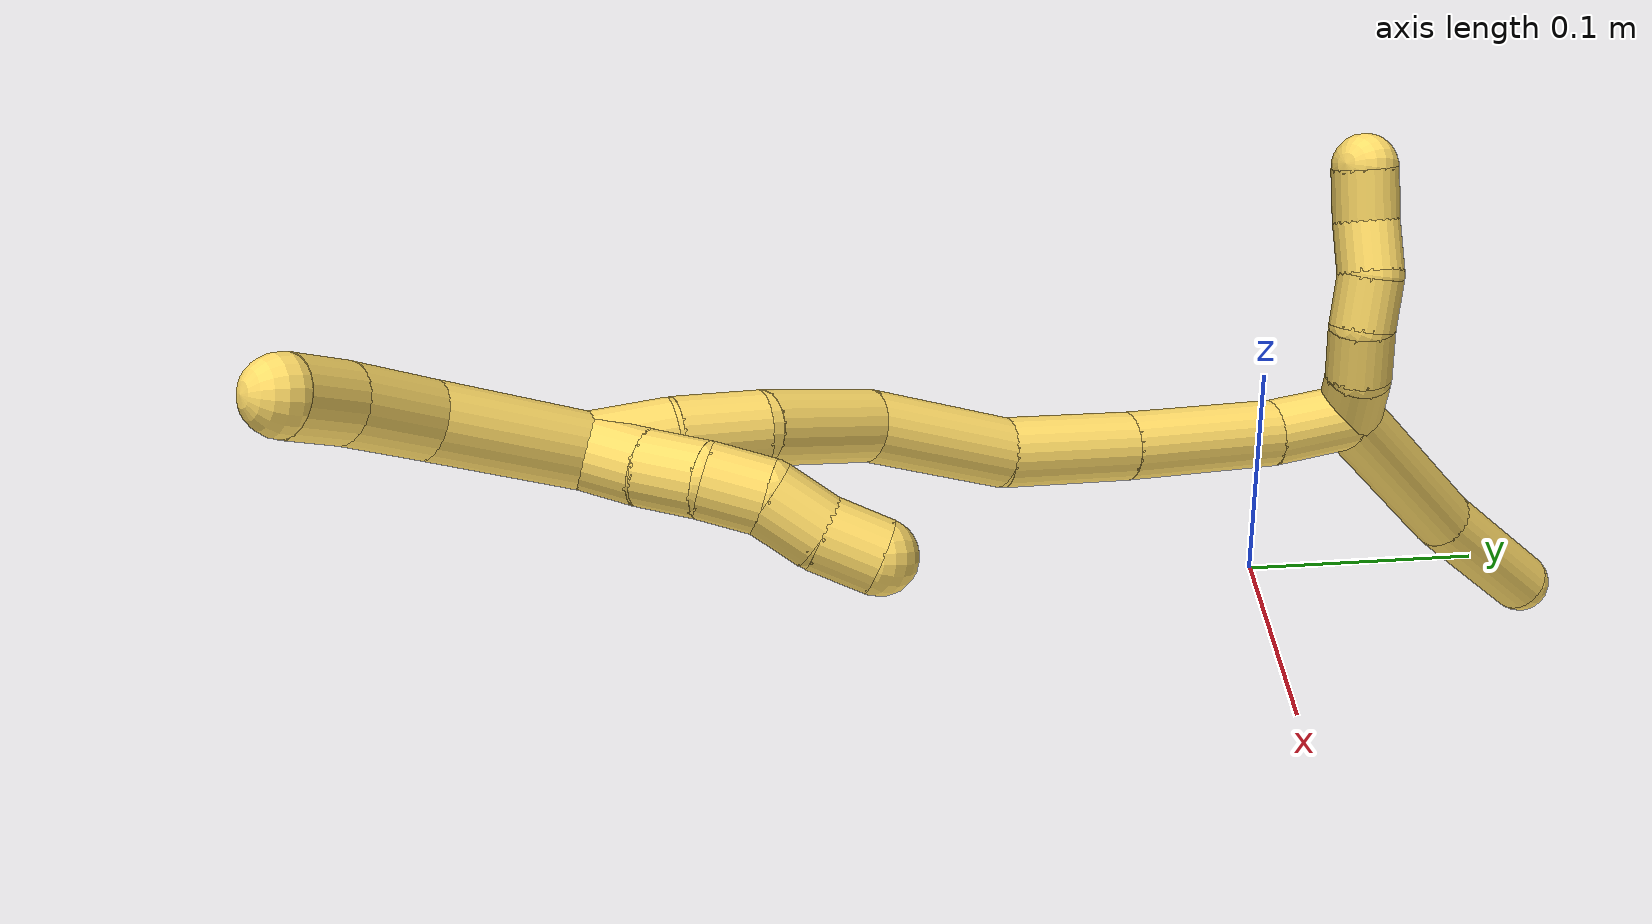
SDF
<sdf version="1.7">
 <world name="default">
  <model name="5">
   <static>0</static>
   <link name="5">
    <collision name="collision-cylinder-e_1_2_8">
     <pose>-0.01358 0.016127 -0.037434 -2.7348 -0.321593 1.3328</pose>
     <geometry><cylinder><radius>0.0125</radius><length>0.085925</length></cylinder></geometry>
     <surface>
      <friction><ode><mu>1.16</mu><mu2>1.16</mu2><slip1>0</slip1><slip2>0</slip2></ode></friction>
      <contact><ode><kp>1e+06</kp><kd>1</kd><max_vel>0</max_vel><min_depth>0.001</min_depth></ode></contact>
     </surface>
    </collision>
    <visual name="visual-cylinder-e_1_2_8">
     <pose>-0.01358 0.016127 -0.037434 -2.7348 -0.321593 1.3328</pose>
     <geometry><cylinder><radius>0.0125</radius><length>0.085925</length></cylinder></geometry>
     <material><ambient>1 0.858824 0.4 1</ambient></material>
    </visual>
    <collision name="collision-cylinder-e_2_8_6">
     <pose>-0.039055 0.04089 -0.103333 -2.84706 -0.380426 1.82868</pose>
     <geometry><cylinder><radius>0.0125</radius><length>0.064075</length></cylinder></geometry>
     <surface>
      <friction><ode><mu>1.16</mu><mu2>1.16</mu2><slip1>0</slip1><slip2>0</slip2></ode></friction>
      <contact><ode><kp>1e+06</kp><kd>1</kd><max_vel>0</max_vel><min_depth>0.001</min_depth></ode></contact>
     </surface>
    </collision>
    <visual name="visual-cylinder-e_2_8_6">
     <pose>-0.039055 0.04089 -0.103333 -2.84706 -0.380426 1.82868</pose>
     <geometry><cylinder><radius>0.0125</radius><length>0.064075</length></cylinder></geometry>
     <material><ambient>1 0.858824 0.4 1</ambient></material>
    </visual>
    <collision name="collision-cylinder-e_1_2_9">
     <pose>0.001788 -0.008811 0.004378 1.10968 0.179766 0.111601</pose>
     <geometry><cylinder><radius>0.0125</radius><length>0.02</length></cylinder></geometry>
     <surface>
      <friction><ode><mu>1.16</mu><mu2>1.16</mu2><slip1>0</slip1><slip2>0</slip2></ode></friction>
      <contact><ode><kp>1e+06</kp><kd>1</kd><max_vel>0</max_vel><min_depth>0.001</min_depth></ode></contact>
     </surface>
    </collision>
    <visual name="visual-cylinder-e_1_2_9">
     <pose>0.001788 -0.008811 0.004378 1.10968 0.179766 0.111601</pose>
     <geometry><cylinder><radius>0.0125</radius><length>0.02</length></cylinder></geometry>
     <material><ambient>1 0.858824 0.4 1</ambient></material>
    </visual>
    <collision name="collision-cylinder-e_2_9_10">
     <pose>0.007902 -0.025999 0.01209 1.1919 0.447396 0.306177</pose>
     <geometry><cylinder><radius>0.0125</radius><length>0.02</length></cylinder></geometry>
     <surface>
      <friction><ode><mu>1.16</mu><mu2>1.16</mu2><slip1>0</slip1><slip2>0</slip2></ode></friction>
      <contact><ode><kp>1e+06</kp><kd>1</kd><max_vel>0</max_vel><min_depth>0.001</min_depth></ode></contact>
     </surface>
    </collision>
    <visual name="visual-cylinder-e_2_9_10">
     <pose>0.007902 -0.025999 0.01209 1.1919 0.447396 0.306177</pose>
     <geometry><cylinder><radius>0.0125</radius><length>0.02</length></cylinder></geometry>
     <material><ambient>1 0.858824 0.4 1</ambient></material>
    </visual>
    <collision name="collision-cylinder-e_3_10_11">
     <pose>0.017562 -0.042815 0.015992 1.50374 0.562563 0.527777</pose>
     <geometry><cylinder><radius>0.0125</radius><length>0.02</length></cylinder></geometry>
     <surface>
      <friction><ode><mu>1.16</mu><mu2>1.16</mu2><slip1>0</slip1><slip2>0</slip2></ode></friction>
      <contact><ode><kp>1e+06</kp><kd>1</kd><max_vel>0</max_vel><min_depth>0.001</min_depth></ode></contact>
     </surface>
    </collision>
    <visual name="visual-cylinder-e_3_10_11">
     <pose>0.017562 -0.042815 0.015992 1.50374 0.562563 0.527777</pose>
     <geometry><cylinder><radius>0.0125</radius><length>0.02</length></cylinder></geometry>
     <material><ambient>1 0.858824 0.4 1</ambient></material>
    </visual>
    <collision name="collision-cylinder-e_4_11_12">
     <pose>0.030726 -0.057474 0.01662 1.56094 0.899627 0.891931</pose>
     <geometry><cylinder><radius>0.0125</radius><length>0.02</length></cylinder></geometry>
     <surface>
      <friction><ode><mu>1.16</mu><mu2>1.16</mu2><slip1>0</slip1><slip2>0</slip2></ode></friction>
      <contact><ode><kp>1e+06</kp><kd>1</kd><max_vel>0</max_vel><min_depth>0.001</min_depth></ode></contact>
     </surface>
    </collision>
    <visual name="visual-cylinder-e_4_11_12">
     <pose>0.030726 -0.057474 0.01662 1.56094 0.899627 0.891931</pose>
     <geometry><cylinder><radius>0.0125</radius><length>0.02</length></cylinder></geometry>
     <material><ambient>1 0.858824 0.4 1</ambient></material>
    </visual>
    <collision name="collision-cylinder-e_5_12_5">
     <pose>0.044903 -0.071185 0.01858 1.32264 0.687396 0.543285</pose>
     <geometry><cylinder><radius>0.0125</radius><length>0.02</length></cylinder></geometry>
     <surface>
      <friction><ode><mu>1.16</mu><mu2>1.16</mu2><slip1>0</slip1><slip2>0</slip2></ode></friction>
      <contact><ode><kp>1e+06</kp><kd>1</kd><max_vel>0</max_vel><min_depth>0.001</min_depth></ode></contact>
     </surface>
    </collision>
    <visual name="visual-cylinder-e_5_12_5">
     <pose>0.044903 -0.071185 0.01858 1.32264 0.687396 0.543285</pose>
     <geometry><cylinder><radius>0.0125</radius><length>0.02</length></cylinder></geometry>
     <material><ambient>1 0.858824 0.4 1</ambient></material>
    </visual>
    <collision name="collision-cylinder-e_1_2_13">
     <pose>0.003435 0.008055 0.014086 -0.51946 0.208592 -0.055617</pose>
     <geometry><cylinder><radius>0.0125</radius><length>0.033173</length></cylinder></geometry>
     <surface>
      <friction><ode><mu>1.16</mu><mu2>1.16</mu2><slip1>0</slip1><slip2>0</slip2></ode></friction>
      <contact><ode><kp>1e+06</kp><kd>1</kd><max_vel>0</max_vel><min_depth>0.001</min_depth></ode></contact>
     </surface>
    </collision>
    <visual name="visual-cylinder-e_1_2_13">
     <pose>0.003435 0.008055 0.014086 -0.51946 0.208592 -0.055617</pose>
     <geometry><cylinder><radius>0.0125</radius><length>0.033173</length></cylinder></geometry>
     <material><ambient>1 0.858824 0.4 1</ambient></material>
    </visual>
    <collision name="collision-cylinder-e_2_13_14">
     <pose>0.013589 0.02636 0.056142 -0.351278 0.221879 -0.039533</pose>
     <geometry><cylinder><radius>0.0125</radius><length>0.061073</length></cylinder></geometry>
     <surface>
      <friction><ode><mu>1.16</mu><mu2>1.16</mu2><slip1>0</slip1><slip2>0</slip2></ode></friction>
      <contact><ode><kp>1e+06</kp><kd>1</kd><max_vel>0</max_vel><min_depth>0.001</min_depth></ode></contact>
     </surface>
    </collision>
    <visual name="visual-cylinder-e_2_13_14">
     <pose>0.013589 0.02636 0.056142 -0.351278 0.221879 -0.039533</pose>
     <geometry><cylinder><radius>0.0125</radius><length>0.061073</length></cylinder></geometry>
     <material><ambient>1 0.858824 0.4 1</ambient></material>
    </visual>
    <collision name="collision-cylinder-e_3_14_15">
     <pose>0.026335 0.044318 0.106741 -0.328252 0.246885 -0.041091</pose>
     <geometry><cylinder><radius>0.0125</radius><length>0.049309</length></cylinder></geometry>
     <surface>
      <friction><ode><mu>1.16</mu><mu2>1.16</mu2><slip1>0</slip1><slip2>0</slip2></ode></friction>
      <contact><ode><kp>1e+06</kp><kd>1</kd><max_vel>0</max_vel><min_depth>0.001</min_depth></ode></contact>
     </surface>
    </collision>
    <visual name="visual-cylinder-e_3_14_15">
     <pose>0.026335 0.044318 0.106741 -0.328252 0.246885 -0.041091</pose>
     <geometry><cylinder><radius>0.0125</radius><length>0.049309</length></cylinder></geometry>
     <material><ambient>1 0.858824 0.4 1</ambient></material>
    </visual>
    <collision name="collision-cylinder-e_4_15_16">
     <pose>0.041317 0.054315 0.154543 -0.090715 0.340564 -0.015609</pose>
     <geometry><cylinder><radius>0.0125</radius><length>0.05363</length></cylinder></geometry>
     <surface>
      <friction><ode><mu>1.16</mu><mu2>1.16</mu2><slip1>0</slip1><slip2>0</slip2></ode></friction>
      <contact><ode><kp>1e+06</kp><kd>1</kd><max_vel>0</max_vel><min_depth>0.001</min_depth></ode></contact>
     </surface>
    </collision>
    <visual name="visual-cylinder-e_4_15_16">
     <pose>0.041317 0.054315 0.154543 -0.090715 0.340564 -0.015609</pose>
     <geometry><cylinder><radius>0.0125</radius><length>0.05363</length></cylinder></geometry>
     <material><ambient>1 0.858824 0.4 1</ambient></material>
    </visual>
    <collision name="collision-cylinder-e_5_16_17">
     <pose>0.050469 0.057395 0.202584 -0.034563 0.008539 -0.000148</pose>
     <geometry><cylinder><radius>0.0125</radius><length>0.045769</length></cylinder></geometry>
     <surface>
      <friction><ode><mu>1.16</mu><mu2>1.16</mu2><slip1>0</slip1><slip2>0</slip2></ode></friction>
      <contact><ode><kp>1e+06</kp><kd>1</kd><max_vel>0</max_vel><min_depth>0.001</min_depth></ode></contact>
     </surface>
    </collision>
    <visual name="visual-cylinder-e_5_16_17">
     <pose>0.050469 0.057395 0.202584 -0.034563 0.008539 -0.000148</pose>
     <geometry><cylinder><radius>0.0125</radius><length>0.045769</length></cylinder></geometry>
     <material><ambient>1 0.858824 0.4 1</ambient></material>
    </visual>
    <collision name="collision-cylinder-e_6_17_18">
     <pose>0.053276 0.062546 0.239323 -0.304577 0.177752 -0.027351</pose>
     <geometry><cylinder><radius>0.0125</radius><length>0.029542</length></cylinder></geometry>
     <surface>
      <friction><ode><mu>1.16</mu><mu2>1.16</mu2><slip1>0</slip1><slip2>0</slip2></ode></friction>
      <contact><ode><kp>1e+06</kp><kd>1</kd><max_vel>0</max_vel><min_depth>0.001</min_depth></ode></contact>
     </surface>
    </collision>
    <visual name="visual-cylinder-e_6_17_18">
     <pose>0.053276 0.062546 0.239323 -0.304577 0.177752 -0.027351</pose>
     <geometry><cylinder><radius>0.0125</radius><length>0.029542</length></cylinder></geometry>
     <material><ambient>1 0.858824 0.4 1</ambient></material>
    </visual>
    <collision name="collision-cylinder-e_7_18_1">
     <pose>0.058228 0.072832 0.265379 -0.452651 0.171046 -0.039478</pose>
     <geometry><cylinder><radius>0.0125</radius><length>0.027503</length></cylinder></geometry>
     <surface>
      <friction><ode><mu>1.16</mu><mu2>1.16</mu2><slip1>0</slip1><slip2>0</slip2></ode></friction>
      <contact><ode><kp>1e+06</kp><kd>1</kd><max_vel>0</max_vel><min_depth>0.001</min_depth></ode></contact>
     </surface>
    </collision>
    <visual name="visual-cylinder-e_7_18_1">
     <pose>0.058228 0.072832 0.265379 -0.452651 0.171046 -0.039478</pose>
     <geometry><cylinder><radius>0.0125</radius><length>0.027503</length></cylinder></geometry>
     <material><ambient>1 0.858824 0.4 1</ambient></material>
    </visual>
    <collision name="collision-cylinder-e_1_1_19">
     <pose>0.052884 0.07449 0.272799 2.41121 -0.876556 -1.77301</pose>
     <geometry><cylinder><radius>0.0125</radius><length>0.02</length></cylinder></geometry>
     <surface>
      <friction><ode><mu>1.16</mu><mu2>1.16</mu2><slip1>0</slip1><slip2>0</slip2></ode></friction>
      <contact><ode><kp>1e+06</kp><kd>1</kd><max_vel>0</max_vel><min_depth>0.001</min_depth></ode></contact>
     </surface>
    </collision>
    <visual name="visual-cylinder-e_1_1_19">
     <pose>0.052884 0.07449 0.272799 2.41121 -0.876556 -1.77301</pose>
     <geometry><cylinder><radius>0.0125</radius><length>0.02</length></cylinder></geometry>
     <material><ambient>1 0.858824 0.4 1</ambient></material>
    </visual>
    <collision name="collision-cylinder-e_2_19_20">
     <pose>0.038024 0.065555 0.262861 2.40746 -0.800107 -1.66577</pose>
     <geometry><cylinder><radius>0.0125</radius><length>0.02</length></cylinder></geometry>
     <surface>
      <friction><ode><mu>1.16</mu><mu2>1.16</mu2><slip1>0</slip1><slip2>0</slip2></ode></friction>
      <contact><ode><kp>1e+06</kp><kd>1</kd><max_vel>0</max_vel><min_depth>0.001</min_depth></ode></contact>
     </surface>
    </collision>
    <visual name="visual-cylinder-e_2_19_20">
     <pose>0.038024 0.065555 0.262861 2.40746 -0.800107 -1.66577</pose>
     <geometry><cylinder><radius>0.0125</radius><length>0.02</length></cylinder></geometry>
     <material><ambient>1 0.858824 0.4 1</ambient></material>
    </visual>
    <collision name="collision-cylinder-e_3_20_21">
     <pose>0.024271 0.057995 0.250736 2.74729 -0.718024 -2.16334</pose>
     <geometry><cylinder><radius>0.0125</radius><length>0.02</length></cylinder></geometry>
     <surface>
      <friction><ode><mu>1.16</mu><mu2>1.16</mu2><slip1>0</slip1><slip2>0</slip2></ode></friction>
      <contact><ode><kp>1e+06</kp><kd>1</kd><max_vel>0</max_vel><min_depth>0.001</min_depth></ode></contact>
     </surface>
    </collision>
    <visual name="visual-cylinder-e_3_20_21">
     <pose>0.024271 0.057995 0.250736 2.74729 -0.718024 -2.16334</pose>
     <geometry><cylinder><radius>0.0125</radius><length>0.02</length></cylinder></geometry>
     <material><ambient>1 0.858824 0.4 1</ambient></material>
    </visual>
    <collision name="collision-cylinder-e_4_21_22">
     <pose>0.010295 0.055531 0.237067 -3.0777 -0.832643 2.9973</pose>
     <geometry><cylinder><radius>0.0125</radius><length>0.02</length></cylinder></geometry>
     <surface>
      <friction><ode><mu>1.16</mu><mu2>1.16</mu2><slip1>0</slip1><slip2>0</slip2></ode></friction>
      <contact><ode><kp>1e+06</kp><kd>1</kd><max_vel>0</max_vel><min_depth>0.001</min_depth></ode></contact>
     </surface>
    </collision>
    <visual name="visual-cylinder-e_4_21_22">
     <pose>0.010295 0.055531 0.237067 -3.0777 -0.832643 2.9973</pose>
     <geometry><cylinder><radius>0.0125</radius><length>0.02</length></cylinder></geometry>
     <material><ambient>1 0.858824 0.4 1</ambient></material>
    </visual>
    <collision name="collision-cylinder-e_5_22_4">
     <pose>-0.003829 0.05462 0.223075 2.95943 -0.737822 -2.67761</pose>
     <geometry><cylinder><radius>0.0125</radius><length>0.02</length></cylinder></geometry>
     <surface>
      <friction><ode><mu>1.16</mu><mu2>1.16</mu2><slip1>0</slip1><slip2>0</slip2></ode></friction>
      <contact><ode><kp>1e+06</kp><kd>1</kd><max_vel>0</max_vel><min_depth>0.001</min_depth></ode></contact>
     </surface>
    </collision>
    <visual name="visual-cylinder-e_5_22_4">
     <pose>-0.003829 0.05462 0.223075 2.95943 -0.737822 -2.67761</pose>
     <geometry><cylinder><radius>0.0125</radius><length>0.02</length></cylinder></geometry>
     <material><ambient>1 0.858824 0.4 1</ambient></material>
    </visual>
    <collision name="collision-cylinder-e_1_1_23">
     <pose>0.067836 0.079245 0.301785 -0.02005 0.291447 -0.002943</pose>
     <geometry><cylinder><radius>0.0125</radius><length>0.050584</length></cylinder></geometry>
     <surface>
      <friction><ode><mu>1.16</mu><mu2>1.16</mu2><slip1>0</slip1><slip2>0</slip2></ode></friction>
      <contact><ode><kp>1e+06</kp><kd>1</kd><max_vel>0</max_vel><min_depth>0.001</min_depth></ode></contact>
     </surface>
    </collision>
    <visual name="visual-cylinder-e_1_1_23">
     <pose>0.067836 0.079245 0.301785 -0.02005 0.291447 -0.002943</pose>
     <geometry><cylinder><radius>0.0125</radius><length>0.050584</length></cylinder></geometry>
     <material><ambient>1 0.858824 0.4 1</ambient></material>
    </visual>
    <collision name="collision-cylinder-e_2_23_24">
     <pose>0.075768 0.077006 0.340335 0.187871 0.045521 0.004289</pose>
     <geometry><cylinder><radius>0.0125</radius><length>0.029201</length></cylinder></geometry>
     <surface>
      <friction><ode><mu>1.16</mu><mu2>1.16</mu2><slip1>0</slip1><slip2>0</slip2></ode></friction>
      <contact><ode><kp>1e+06</kp><kd>1</kd><max_vel>0</max_vel><min_depth>0.001</min_depth></ode></contact>
     </surface>
    </collision>
    <visual name="visual-cylinder-e_2_23_24">
     <pose>0.075768 0.077006 0.340335 0.187871 0.045521 0.004289</pose>
     <geometry><cylinder><radius>0.0125</radius><length>0.029201</length></cylinder></geometry>
     <material><ambient>1 0.858824 0.4 1</ambient></material>
    </visual>
    <collision name="collision-cylinder-e_3_24_3">
     <pose>0.075795 0.072308 0.364556 0.196925 -0.063167 -0.006242</pose>
     <geometry><cylinder><radius>0.0125</radius><length>0.020215</length></cylinder></geometry>
     <surface>
      <friction><ode><mu>1.16</mu><mu2>1.16</mu2><slip1>0</slip1><slip2>0</slip2></ode></friction>
      <contact><ode><kp>1e+06</kp><kd>1</kd><max_vel>0</max_vel><min_depth>0.001</min_depth></ode></contact>
     </surface>
    </collision>
    <visual name="visual-cylinder-e_3_24_3">
     <pose>0.075795 0.072308 0.364556 0.196925 -0.063167 -0.006242</pose>
     <geometry><cylinder><radius>0.0125</radius><length>0.020215</length></cylinder></geometry>
     <material><ambient>1 0.858824 0.4 1</ambient></material>
    </visual>
    <collision name="collision-sphere-3">
     <pose>0.075156 0.070335 0.374448 0 -0 0</pose>
     <geometry><sphere><radius>0.0125</radius></sphere></geometry>
     <surface>
      <friction><ode><mu>1.16</mu><mu2>1.16</mu2><slip1>0</slip1><slip2>0</slip2></ode></friction>
      <contact><ode><kp>1e+06</kp><kd>1</kd><max_vel>0</max_vel><min_depth>0.001</min_depth></ode></contact>
     </surface>
    </collision>
    <visual name="visual-sphere-3">
     <pose>0.075156 0.070335 0.374448 0 -0 0</pose>
     <geometry><sphere><radius>0.0125</radius></sphere></geometry>
     <material><ambient>1 0.858824 0.4 1</ambient></material>
    </visual>
    <collision name="collision-sphere-24">
     <pose>0.076433 0.074282 0.354664 0 -0 0</pose>
     <geometry><sphere><radius>0.0125</radius></sphere></geometry>
     <surface>
      <friction><ode><mu>1.16</mu><mu2>1.16</mu2><slip1>0</slip1><slip2>0</slip2></ode></friction>
      <contact><ode><kp>1e+06</kp><kd>1</kd><max_vel>0</max_vel><min_depth>0.001</min_depth></ode></contact>
     </surface>
    </collision>
    <visual name="visual-sphere-24">
     <pose>0.076433 0.074282 0.354664 0 -0 0</pose>
     <geometry><sphere><radius>0.0125</radius></sphere></geometry>
     <material><ambient>1 0.858824 0.4 1</ambient></material>
    </visual>
    <collision name="collision-sphere-23">
     <pose>0.075104 0.07973 0.326006 0 -0 0</pose>
     <geometry><sphere><radius>0.0125</radius></sphere></geometry>
     <surface>
      <friction><ode><mu>1.16</mu><mu2>1.16</mu2><slip1>0</slip1><slip2>0</slip2></ode></friction>
      <contact><ode><kp>1e+06</kp><kd>1</kd><max_vel>0</max_vel><min_depth>0.001</min_depth></ode></contact>
     </surface>
    </collision>
    <visual name="visual-sphere-23">
     <pose>0.075104 0.07973 0.326006 0 -0 0</pose>
     <geometry><sphere><radius>0.0125</radius></sphere></geometry>
     <material><ambient>1 0.858824 0.4 1</ambient></material>
    </visual>
    <collision name="collision-sphere-4">
     <pose>-0.010556 0.05328 0.215798 0 -0 0</pose>
     <geometry><sphere><radius>0.0125</radius></sphere></geometry>
     <surface>
      <friction><ode><mu>1.16</mu><mu2>1.16</mu2><slip1>0</slip1><slip2>0</slip2></ode></friction>
      <contact><ode><kp>1e+06</kp><kd>1</kd><max_vel>0</max_vel><min_depth>0.001</min_depth></ode></contact>
     </surface>
    </collision>
    <visual name="visual-sphere-4">
     <pose>-0.010556 0.05328 0.215798 0 -0 0</pose>
     <geometry><sphere><radius>0.0125</radius></sphere></geometry>
     <material><ambient>1 0.858824 0.4 1</ambient></material>
    </visual>
    <collision name="collision-sphere-22">
     <pose>0.002897 0.055961 0.230352 0 -0 0</pose>
     <geometry><sphere><radius>0.0125</radius></sphere></geometry>
     <surface>
      <friction><ode><mu>1.16</mu><mu2>1.16</mu2><slip1>0</slip1><slip2>0</slip2></ode></friction>
      <contact><ode><kp>1e+06</kp><kd>1</kd><max_vel>0</max_vel><min_depth>0.001</min_depth></ode></contact>
     </surface>
    </collision>
    <visual name="visual-sphere-22">
     <pose>0.002897 0.055961 0.230352 0 -0 0</pose>
     <geometry><sphere><radius>0.0125</radius></sphere></geometry>
     <material><ambient>1 0.858824 0.4 1</ambient></material>
    </visual>
    <collision name="collision-sphere-21">
     <pose>0.017692 0.055102 0.243783 0 -0 0</pose>
     <geometry><sphere><radius>0.0125</radius></sphere></geometry>
     <surface>
      <friction><ode><mu>1.16</mu><mu2>1.16</mu2><slip1>0</slip1><slip2>0</slip2></ode></friction>
      <contact><ode><kp>1e+06</kp><kd>1</kd><max_vel>0</max_vel><min_depth>0.001</min_depth></ode></contact>
     </surface>
    </collision>
    <visual name="visual-sphere-21">
     <pose>0.017692 0.055102 0.243783 0 -0 0</pose>
     <geometry><sphere><radius>0.0125</radius></sphere></geometry>
     <material><ambient>1 0.858824 0.4 1</ambient></material>
    </visual>
    <collision name="collision-sphere-20">
     <pose>0.03085 0.060888 0.257689 0 -0 0</pose>
     <geometry><sphere><radius>0.0125</radius></sphere></geometry>
     <surface>
      <friction><ode><mu>1.16</mu><mu2>1.16</mu2><slip1>0</slip1><slip2>0</slip2></ode></friction>
      <contact><ode><kp>1e+06</kp><kd>1</kd><max_vel>0</max_vel><min_depth>0.001</min_depth></ode></contact>
     </surface>
    </collision>
    <visual name="visual-sphere-20">
     <pose>0.03085 0.060888 0.257689 0 -0 0</pose>
     <geometry><sphere><radius>0.0125</radius></sphere></geometry>
     <material><ambient>1 0.858824 0.4 1</ambient></material>
    </visual>
    <collision name="collision-sphere-11">
     <pose>0.022895 -0.051255 0.016559 0 -0 0</pose>
     <geometry><sphere><radius>0.0125</radius></sphere></geometry>
     <surface>
      <friction><ode><mu>1.16</mu><mu2>1.16</mu2><slip1>0</slip1><slip2>0</slip2></ode></friction>
      <contact><ode><kp>1e+06</kp><kd>1</kd><max_vel>0</max_vel><min_depth>0.001</min_depth></ode></contact>
     </surface>
    </collision>
    <visual name="visual-sphere-11">
     <pose>0.022895 -0.051255 0.016559 0 -0 0</pose>
     <geometry><sphere><radius>0.0125</radius></sphere></geometry>
     <material><ambient>1 0.858824 0.4 1</ambient></material>
    </visual>
    <collision name="collision-sphere-10">
     <pose>0.012228 -0.034375 0.015425 0 -0 0</pose>
     <geometry><sphere><radius>0.0125</radius></sphere></geometry>
     <surface>
      <friction><ode><mu>1.16</mu><mu2>1.16</mu2><slip1>0</slip1><slip2>0</slip2></ode></friction>
      <contact><ode><kp>1e+06</kp><kd>1</kd><max_vel>0</max_vel><min_depth>0.001</min_depth></ode></contact>
     </surface>
    </collision>
    <visual name="visual-sphere-10">
     <pose>0.012228 -0.034375 0.015425 0 -0 0</pose>
     <geometry><sphere><radius>0.0125</radius></sphere></geometry>
     <material><ambient>1 0.858824 0.4 1</ambient></material>
    </visual>
    <collision name="collision-sphere-6">
     <pose>-0.050951 0.049525 -0.1318 0 -0 0</pose>
     <geometry><sphere><radius>0.0125</radius></sphere></geometry>
     <surface>
      <friction><ode><mu>1.16</mu><mu2>1.16</mu2><slip1>0</slip1><slip2>0</slip2></ode></friction>
      <contact><ode><kp>1e+06</kp><kd>1</kd><max_vel>0</max_vel><min_depth>0.001</min_depth></ode></contact>
     </surface>
    </collision>
    <visual name="visual-sphere-6">
     <pose>-0.050951 0.049525 -0.1318 0 -0 0</pose>
     <geometry><sphere><radius>0.0125</radius></sphere></geometry>
     <material><ambient>1 0.858824 0.4 1</ambient></material>
    </visual>
    <collision name="collision-sphere-9">
     <pose>0.003576 -0.017622 0.008756 0 -0 0</pose>
     <geometry><sphere><radius>0.0125</radius></sphere></geometry>
     <surface>
      <friction><ode><mu>1.16</mu><mu2>1.16</mu2><slip1>0</slip1><slip2>0</slip2></ode></friction>
      <contact><ode><kp>1e+06</kp><kd>1</kd><max_vel>0</max_vel><min_depth>0.001</min_depth></ode></contact>
     </surface>
    </collision>
    <visual name="visual-sphere-9">
     <pose>0.003576 -0.017622 0.008756 0 -0 0</pose>
     <geometry><sphere><radius>0.0125</radius></sphere></geometry>
     <material><ambient>1 0.858824 0.4 1</ambient></material>
    </visual>
    <collision name="collision-sphere-2">
     <geometry><sphere><radius>0.0125</radius></sphere></geometry>
     <surface>
      <friction><ode><mu>1.16</mu><mu2>1.16</mu2><slip1>0</slip1><slip2>0</slip2></ode></friction>
      <contact><ode><kp>1e+06</kp><kd>1</kd><max_vel>0</max_vel><min_depth>0.001</min_depth></ode></contact>
     </surface>
    </collision>
    <visual name="visual-sphere-2">
     <geometry><sphere><radius>0.0125</radius></sphere></geometry>
     <material><ambient>1 0.858824 0.4 1</ambient></material>
    </visual>
    <collision name="collision-sphere-19">
     <pose>0.045198 0.070222 0.268033 0 -0 0</pose>
     <geometry><sphere><radius>0.0125</radius></sphere></geometry>
     <surface>
      <friction><ode><mu>1.16</mu><mu2>1.16</mu2><slip1>0</slip1><slip2>0</slip2></ode></friction>
      <contact><ode><kp>1e+06</kp><kd>1</kd><max_vel>0</max_vel><min_depth>0.001</min_depth></ode></contact>
     </surface>
    </collision>
    <visual name="visual-sphere-19">
     <pose>0.045198 0.070222 0.268033 0 -0 0</pose>
     <geometry><sphere><radius>0.0125</radius></sphere></geometry>
     <material><ambient>1 0.858824 0.4 1</ambient></material>
    </visual>
    <collision name="collision-sphere-8">
     <pose>-0.027159 0.032255 -0.074867 0 -0 0</pose>
     <geometry><sphere><radius>0.0125</radius></sphere></geometry>
     <surface>
      <friction><ode><mu>1.16</mu><mu2>1.16</mu2><slip1>0</slip1><slip2>0</slip2></ode></friction>
      <contact><ode><kp>1e+06</kp><kd>1</kd><max_vel>0</max_vel><min_depth>0.001</min_depth></ode></contact>
     </surface>
    </collision>
    <visual name="visual-sphere-8">
     <pose>-0.027159 0.032255 -0.074867 0 -0 0</pose>
     <geometry><sphere><radius>0.0125</radius></sphere></geometry>
     <material><ambient>1 0.858824 0.4 1</ambient></material>
    </visual>
    <collision name="collision-sphere-12">
     <pose>0.038557 -0.063692 0.016681 0 -0 0</pose>
     <geometry><sphere><radius>0.0125</radius></sphere></geometry>
     <surface>
      <friction><ode><mu>1.16</mu><mu2>1.16</mu2><slip1>0</slip1><slip2>0</slip2></ode></friction>
      <contact><ode><kp>1e+06</kp><kd>1</kd><max_vel>0</max_vel><min_depth>0.001</min_depth></ode></contact>
     </surface>
    </collision>
    <visual name="visual-sphere-12">
     <pose>0.038557 -0.063692 0.016681 0 -0 0</pose>
     <geometry><sphere><radius>0.0125</radius></sphere></geometry>
     <material><ambient>1 0.858824 0.4 1</ambient></material>
    </visual>
    <collision name="collision-sphere-5">
     <pose>0.051248 -0.078677 0.020478 0 -0 0</pose>
     <geometry><sphere><radius>0.0125</radius></sphere></geometry>
     <surface>
      <friction><ode><mu>1.16</mu><mu2>1.16</mu2><slip1>0</slip1><slip2>0</slip2></ode></friction>
      <contact><ode><kp>1e+06</kp><kd>1</kd><max_vel>0</max_vel><min_depth>0.001</min_depth></ode></contact>
     </surface>
    </collision>
    <visual name="visual-sphere-5">
     <pose>0.051248 -0.078677 0.020478 0 -0 0</pose>
     <geometry><sphere><radius>0.0125</radius></sphere></geometry>
     <material><ambient>1 0.858824 0.4 1</ambient></material>
    </visual>
    <collision name="collision-sphere-13">
     <pose>0.00687 0.016111 0.028173 0 -0 0</pose>
     <geometry><sphere><radius>0.0125</radius></sphere></geometry>
     <surface>
      <friction><ode><mu>1.16</mu><mu2>1.16</mu2><slip1>0</slip1><slip2>0</slip2></ode></friction>
      <contact><ode><kp>1e+06</kp><kd>1</kd><max_vel>0</max_vel><min_depth>0.001</min_depth></ode></contact>
     </surface>
    </collision>
    <visual name="visual-sphere-13">
     <pose>0.00687 0.016111 0.028173 0 -0 0</pose>
     <geometry><sphere><radius>0.0125</radius></sphere></geometry>
     <material><ambient>1 0.858824 0.4 1</ambient></material>
    </visual>
    <collision name="collision-sphere-14">
     <pose>0.020309 0.03661 0.084111 0 -0 0</pose>
     <geometry><sphere><radius>0.0125</radius></sphere></geometry>
     <surface>
      <friction><ode><mu>1.16</mu><mu2>1.16</mu2><slip1>0</slip1><slip2>0</slip2></ode></friction>
      <contact><ode><kp>1e+06</kp><kd>1</kd><max_vel>0</max_vel><min_depth>0.001</min_depth></ode></contact>
     </surface>
    </collision>
    <visual name="visual-sphere-14">
     <pose>0.020309 0.03661 0.084111 0 -0 0</pose>
     <geometry><sphere><radius>0.0125</radius></sphere></geometry>
     <material><ambient>1 0.858824 0.4 1</ambient></material>
    </visual>
    <collision name="collision-sphere-15">
     <pose>0.03236 0.052025 0.129372 0 -0 0</pose>
     <geometry><sphere><radius>0.0125</radius></sphere></geometry>
     <surface>
      <friction><ode><mu>1.16</mu><mu2>1.16</mu2><slip1>0</slip1><slip2>0</slip2></ode></friction>
      <contact><ode><kp>1e+06</kp><kd>1</kd><max_vel>0</max_vel><min_depth>0.001</min_depth></ode></contact>
     </surface>
    </collision>
    <visual name="visual-sphere-15">
     <pose>0.03236 0.052025 0.129372 0 -0 0</pose>
     <geometry><sphere><radius>0.0125</radius></sphere></geometry>
     <material><ambient>1 0.858824 0.4 1</ambient></material>
    </visual>
    <collision name="collision-sphere-16">
     <pose>0.050273 0.056604 0.179714 0 -0 0</pose>
     <geometry><sphere><radius>0.0125</radius></sphere></geometry>
     <surface>
      <friction><ode><mu>1.16</mu><mu2>1.16</mu2><slip1>0</slip1><slip2>0</slip2></ode></friction>
      <contact><ode><kp>1e+06</kp><kd>1</kd><max_vel>0</max_vel><min_depth>0.001</min_depth></ode></contact>
     </surface>
    </collision>
    <visual name="visual-sphere-16">
     <pose>0.050273 0.056604 0.179714 0 -0 0</pose>
     <geometry><sphere><radius>0.0125</radius></sphere></geometry>
     <material><ambient>1 0.858824 0.4 1</ambient></material>
    </visual>
    <collision name="collision-sphere-17">
     <pose>0.050664 0.058186 0.225454 0 -0 0</pose>
     <geometry><sphere><radius>0.0125</radius></sphere></geometry>
     <surface>
      <friction><ode><mu>1.16</mu><mu2>1.16</mu2><slip1>0</slip1><slip2>0</slip2></ode></friction>
      <contact><ode><kp>1e+06</kp><kd>1</kd><max_vel>0</max_vel><min_depth>0.001</min_depth></ode></contact>
     </surface>
    </collision>
    <visual name="visual-sphere-17">
     <pose>0.050664 0.058186 0.225454 0 -0 0</pose>
     <geometry><sphere><radius>0.0125</radius></sphere></geometry>
     <material><ambient>1 0.858824 0.4 1</ambient></material>
    </visual>
    <collision name="collision-sphere-18">
     <pose>0.055888 0.066906 0.253192 0 -0 0</pose>
     <geometry><sphere><radius>0.0125</radius></sphere></geometry>
     <surface>
      <friction><ode><mu>1.16</mu><mu2>1.16</mu2><slip1>0</slip1><slip2>0</slip2></ode></friction>
      <contact><ode><kp>1e+06</kp><kd>1</kd><max_vel>0</max_vel><min_depth>0.001</min_depth></ode></contact>
     </surface>
    </collision>
    <visual name="visual-sphere-18">
     <pose>0.055888 0.066906 0.253192 0 -0 0</pose>
     <geometry><sphere><radius>0.0125</radius></sphere></geometry>
     <material><ambient>1 0.858824 0.4 1</ambient></material>
    </visual>
    <collision name="collision-sphere-1">
     <pose>0.060569 0.078759 0.277565 0 -0 0</pose>
     <geometry><sphere><radius>0.0125</radius></sphere></geometry>
     <surface>
      <friction><ode><mu>1.16</mu><mu2>1.16</mu2><slip1>0</slip1><slip2>0</slip2></ode></friction>
      <contact><ode><kp>1e+06</kp><kd>1</kd><max_vel>0</max_vel><min_depth>0.001</min_depth></ode></contact>
     </surface>
    </collision>
    <visual name="visual-sphere-1">
     <pose>0.060569 0.078759 0.277565 0 -0 0</pose>
     <geometry><sphere><radius>0.0125</radius></sphere></geometry>
     <material><ambient>1 0.858824 0.4 1</ambient></material>
    </visual>
    <inertial>
     <pose>0.023921 0.036288 0.120144 0 -0 0</pose>
     <mass>0.75</mass>
     <inertia>
      <ixx>0.000164</ixx>
      <ixy>0</ixy>
      <ixz>0</ixz>
      <iyy>0.000167</iyy>
      <iyz>0</iyz>
      <izz>-1.1e-05</izz>
     </inertia>
    </inertial>
   </link>
   <pose>0.070774 0.017381 0.123473 -1.13505 -0.35673 -2.65629</pose>
  </model>
 </world>
</sdf>
